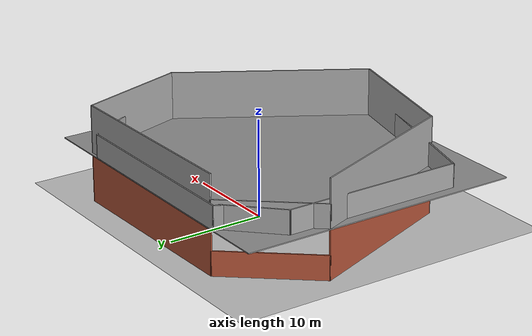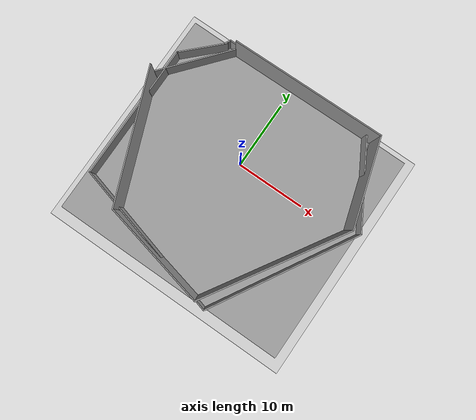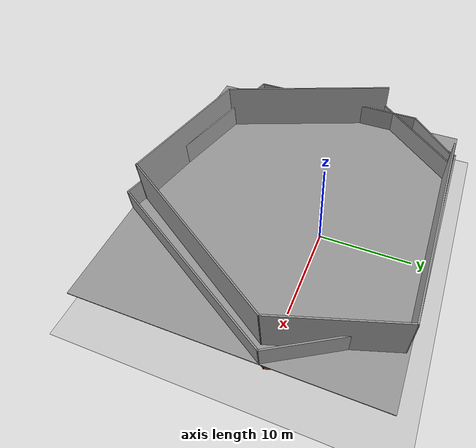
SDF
<sdf version="1.6">
 <world name="default">
  <light name="sun" type="directional">
   <pose>0 0 10 0 -0 0</pose>
   <diffuse>0.8 0.8 0.8 1</diffuse>
   <specular>0.2 0.2 0.2 1</specular>
   <attenuation>
    <range>1000</range>
    <constant>0.9</constant>
    <linear>0.01</linear>
    <quadratic>0.001</quadratic>
   </attenuation>
   <direction>-0.5 0.1 -0.9</direction>
  </light>
  <model name="ground_plane">
   <static>1</static>
   <link name="link">
    <collision name="collision">
     <geometry><plane><normal>0 0 1</normal><size>100 100</size></plane></geometry>
     <surface>
      <contact><collide_bitmask>65535</collide_bitmask></contact>
      <friction><ode><mu>100</mu><mu2>50</mu2></ode></friction>
     </surface>
    </collision>
    <visual name="visual">
     <cast_shadows>0</cast_shadows>
     <geometry><plane><normal>0 0 1</normal><size>100 100</size></plane></geometry>
     <material>
      <script><uri>file://media/materials/scripts/gazebo.material</uri><name>Gazebo/Grey</name></script>
     </material>
    </visual>
   </link>
  </model>
  <gravity>0 0 -9.8</gravity>
  <magnetic_field>6e-06 2.3e-05 -4.2e-05</magnetic_field>
  <atmosphere type="adiabatic"/>
  <physics name="default_physics" default="0" type="ode">
   <max_step_size>0.001</max_step_size>
   <real_time_factor>1</real_time_factor>
   <real_time_update_rate>1000</real_time_update_rate>
  </physics>
  <scene><ambient>0.4 0.4 0.4 1</ambient><background>0.7 0.7 0.7 1</background><shadows>1</shadows></scene>
  <spherical_coordinates>
   <surface_model>EARTH_WGS84</surface_model>
   <latitude_deg>0</latitude_deg>
   <longitude_deg>0</longitude_deg>
   <elevation>0</elevation>
   <heading_deg>0</heading_deg>
  </spherical_coordinates>
  <model name="openarea">
   <pose>1.14228 -3.20594 0 0 -0 0</pose>
   <link name="Floor_0">
    <collision name="Floor_0_Collision">
     <geometry><box><size>32.4698 29.1735 0.1</size></box></geometry>
     <pose>0 0 0.05 0 -0 0</pose>
    </collision>
    <visual name="Floor_0_Visual">
     <pose>0 0 0.05 0 -0 0</pose>
     <geometry><box><size>32.4698 29.1735 0.1</size></box></geometry>
     <material>
      <script><uri>file://media/materials/scripts/gazebo.material</uri><name>Gazebo/Grey</name></script>
      <ambient>1 1 1 1</ambient>
     </material>
     <meta><layer>1</layer></meta>
    </visual>
    <pose>0 0 5 0 -0 0</pose>
   </link>
   <link name="Wall_1">
    <collision name="Wall_1_Collision">
     <geometry><box><size>17.8686 0.15 5</size></box></geometry>
     <pose>0 0 2.5 0 -0 0</pose>
    </collision>
    <visual name="Wall_1_Visual">
     <pose>0 0 2.5 0 -0 0</pose>
     <geometry><box><size>17.8686 0.15 5</size></box></geometry>
     <material>
      <script><uri>file://media/materials/scripts/gazebo.material</uri><name>Gazebo/Bricks</name></script>
      <ambient>1 1 1 1</ambient>
     </material>
     <meta><layer>0</layer></meta>
    </visual>
    <pose>-12.8893 -2.43856 0 0 -0 -1.19639</pose>
   </link>
   <link name="Wall_10">
    <collision name="Wall_10_Collision">
     <geometry><box><size>20.0256 0.15 5</size></box></geometry>
     <pose>0 0 2.5 0 -0 0</pose>
    </collision>
    <visual name="Wall_10_Visual">
     <pose>0 0 2.5 0 -0 0</pose>
     <geometry><box><size>20.0256 0.15 5</size></box></geometry>
     <material>
      <script><uri>file://media/materials/scripts/gazebo.material</uri><name>Gazebo/Grey</name></script>
      <ambient>1 1 1 1</ambient>
     </material>
     <meta><layer>1</layer></meta>
    </visual>
    <pose>9.37972 -5.34806 5 0 -0 1.02037</pose>
   </link>
   <link name="Wall_11">
    <collision name="Wall_11_Collision">
     <geometry><box><size>11.7708 0.15 5</size></box></geometry>
     <pose>0 0 2.5 0 -0 0</pose>
    </collision>
    <visual name="Wall_11_Visual">
     <pose>0 0 2.5 0 -0 0</pose>
     <geometry><box><size>11.7708 0.15 5</size></box></geometry>
     <material>
      <script><uri>file://media/materials/scripts/gazebo.material</uri><name>Gazebo/Grey</name></script>
      <ambient>1 1 1 1</ambient>
     </material>
     <meta><layer>1</layer></meta>
    </visual>
    <pose>12.8707 8.67594 5 0 -0 1.86898</pose>
   </link>
   <link name="Wall_12">
    <collision name="Wall_12_Collision">
     <geometry><box><size>20.6194 0.15 5</size></box></geometry>
     <pose>0 0 2.5 0 -0 0</pose>
    </collision>
    <visual name="Wall_12_Visual">
     <pose>0 0 2.5 0 -0 0</pose>
     <geometry><box><size>20.6194 0.15 5</size></box></geometry>
     <material>
      <script><uri>file://media/materials/scripts/gazebo.material</uri><name>Gazebo/Grey</name></script>
      <ambient>1 1 1 1</ambient>
     </material>
     <meta><layer>1</layer></meta>
    </visual>
    <pose>0.929718 14.1089 5 0 -0 -3.12977</pose>
   </link>
   <link name="Wall_13">
    <collision name="Wall_13_Collision">
     <geometry><box><size>10.8041 0.15 2.5</size></box></geometry>
     <pose>0 0 1.25 0 -0 0</pose>
    </collision>
    <visual name="Wall_13_Visual">
     <pose>0 0 1.25 0 -0 0</pose>
     <geometry><box><size>10.8041 0.15 2.5</size></box></geometry>
     <material>
      <script><uri>file://media/materials/scripts/gazebo.material</uri><name>Gazebo/Grey</name></script>
      <ambient>1 1 1 1</ambient>
     </material>
     <meta><layer>1</layer></meta>
    </visual>
    <pose>-12.7168 9.89744 5 0 -0 -2.26607</pose>
   </link>
   <link name="Wall_14">
    <collision name="Wall_14_Collision">
     <geometry><box><size>6.5 0.15 2.5</size></box></geometry>
     <pose>0 0 1.25 0 -0 0</pose>
    </collision>
    <visual name="Wall_14_Visual">
     <pose>0 0 1.25 0 -0 0</pose>
     <geometry><box><size>6.5 0.15 2.5</size></box></geometry>
     <material>
      <script><uri>file://media/materials/scripts/gazebo.material</uri><name>Gazebo/Grey</name></script>
      <ambient>1 1 1 1</ambient>
     </material>
     <meta><layer>1</layer></meta>
    </visual>
    <pose>-12.9115 11.7013 5 0 -0 -2.35619</pose>
   </link>
   <link name="Wall_15">
    <collision name="Wall_15_Collision">
     <geometry><box><size>18.5 0.15 2.5</size></box></geometry>
     <pose>0 0 1.25 0 -0 0</pose>
    </collision>
    <visual name="Wall_15_Visual">
     <pose>0 0 1.25 0 -0 0</pose>
     <geometry><box><size>18.5 0.15 2.5</size></box></geometry>
     <material>
      <script><uri>file://media/materials/scripts/gazebo.material</uri><name>Gazebo/Grey</name></script>
      <ambient>1 1 1 1</ambient>
     </material>
     <meta><layer>1</layer></meta>
    </visual>
    <pose>-15.1565 0.281217 5 0 -0 -1.5708</pose>
   </link>
   <link name="Wall_16">
    <collision name="Wall_16_Collision">
     <geometry><box><size>21.75 0.15 2.5</size></box></geometry>
     <pose>0 0 1.25 0 -0 0</pose>
    </collision>
    <visual name="Wall_16_Visual">
     <pose>0 0 1.25 0 -0 0</pose>
     <geometry><box><size>21.75 0.15 2.5</size></box></geometry>
     <material>
      <script><uri>file://media/materials/scripts/gazebo.material</uri><name>Gazebo/Grey</name></script>
      <ambient>1 1 1 1</ambient>
     </material>
     <meta><layer>1</layer></meta>
    </visual>
    <pose>-4.72453 -11.689 5 0 -0 -0.261799</pose>
   </link>
   <link name="Wall_17">
    <collision name="Wall_17_Collision">
     <geometry><box><size>21 0.15 2.5</size></box></geometry>
     <pose>0 0 1.25 0 -0 0</pose>
    </collision>
    <visual name="Wall_17_Visual">
     <pose>0 0 1.25 0 -0 0</pose>
     <geometry><box><size>21 0.15 2.5</size></box></geometry>
     <material>
      <script><uri>file://media/materials/scripts/gazebo.material</uri><name>Gazebo/Grey</name></script>
      <ambient>1 1 1 1</ambient>
     </material>
     <meta><layer>1</layer></meta>
    </visual>
    <pose>10.92 -5.45596 5 0 -0 1.0472</pose>
   </link>
   <link name="Wall_18">
    <collision name="Wall_18_Collision">
     <geometry><box><size>12.75 0.15 2.5</size></box></geometry>
     <pose>0 0 1.25 0 -0 0</pose>
    </collision>
    <visual name="Wall_18_Visual">
     <pose>0 0 1.25 0 -0 0</pose>
     <geometry><box><size>12.75 0.15 2.5</size></box></geometry>
     <material>
      <script><uri>file://media/materials/scripts/gazebo.material</uri><name>Gazebo/Grey</name></script>
      <ambient>1 1 1 1</ambient>
     </material>
     <meta><layer>1</layer></meta>
    </visual>
    <pose>12.9825 9.02831 5 0 -0 2.0944</pose>
   </link>
   <link name="Wall_19">
    <collision name="Wall_19_Collision">
     <geometry><box><size>20.5 0.15 2.5</size></box></geometry>
     <pose>0 0 1.25 0 -0 0</pose>
    </collision>
    <visual name="Wall_19_Visual">
     <pose>0 0 1.25 0 -0 0</pose>
     <geometry><box><size>20.5 0.15 2.5</size></box></geometry>
     <material>
      <script><uri>file://media/materials/scripts/gazebo.material</uri><name>Gazebo/Grey</name></script>
      <ambient>1 1 1 1</ambient>
     </material>
     <meta><layer>1</layer></meta>
    </visual>
    <pose>-0.342534 14.4843 5 0 -0 3.14159</pose>
   </link>
   <link name="Wall_2">
    <collision name="Wall_2_Collision">
     <geometry><box><size>14.3316 0.15 5</size></box></geometry>
     <pose>0 0 2.5 0 -0 0</pose>
    </collision>
    <visual name="Wall_2_Visual">
     <pose>0 0 2.5 0 -0 0</pose>
     <geometry><box><size>14.3316 0.15 5</size></box></geometry>
     <material>
      <script><uri>file://media/materials/scripts/gazebo.material</uri><name>Gazebo/Bricks</name></script>
      <ambient>1 1 1 1</ambient>
     </material>
     <meta><layer>0</layer></meta>
    </visual>
    <pose>-2.73378 -12.2511 0 0 -0 -0.22283</pose>
   </link>
   <link name="Wall_20">
    <collision name="Wall_20_Collision">
     <geometry><box><size>1 0.15 2.5</size></box></geometry>
     <pose>0 0 1.25 0 -0 0</pose>
    </collision>
    <visual name="Wall_20_Visual">
     <pose>0 0 1.25 0 -0 0</pose>
     <geometry><box><size>1 0.15 2.5</size></box></geometry>
     <material>
      <script><uri>file://media/materials/scripts/gazebo.material</uri><name>Gazebo/Grey</name></script>
      <ambient>1 1 1 1</ambient>
     </material>
     <meta><layer>1</layer></meta>
    </visual>
    <pose>-10.73 14.1162 5 0 -0 -2.0944</pose>
   </link>
   <link name="Wall_3">
    <collision name="Wall_3_Collision">
     <geometry><box><size>20.0259 0.15 5</size></box></geometry>
     <pose>0 0 2.5 0 -0 0</pose>
    </collision>
    <visual name="Wall_3_Visual">
     <pose>0 0 2.5 0 -0 0</pose>
     <geometry><box><size>20.0259 0.15 5</size></box></geometry>
     <material>
      <script><uri>file://media/materials/scripts/gazebo.material</uri><name>Gazebo/Bricks</name></script>
      <ambient>1 1 1 1</ambient>
     </material>
     <meta><layer>0</layer></meta>
    </visual>
    <pose>9.37972 -5.34806 0 0 -0 1.02037</pose>
   </link>
   <link name="Wall_4">
    <collision name="Wall_4_Collision">
     <geometry><box><size>11.7709 0.15 5</size></box></geometry>
     <pose>0 0 2.5 0 -0 0</pose>
    </collision>
    <visual name="Wall_4_Visual">
     <pose>0 0 2.5 0 -0 0</pose>
     <geometry><box><size>11.7709 0.15 5</size></box></geometry>
     <material>
      <script><uri>file://media/materials/scripts/gazebo.material</uri><name>Gazebo/Bricks</name></script>
      <ambient>1 1 1 1</ambient>
     </material>
     <meta><layer>0</layer></meta>
    </visual>
    <pose>12.8707 8.67594 0 0 -0 1.86898</pose>
   </link>
   <link name="Wall_5">
    <collision name="Wall_5_Collision">
     <geometry><box><size>20.6195 0.15 5</size></box></geometry>
     <pose>0 0 2.5 0 -0 0</pose>
    </collision>
    <visual name="Wall_5_Visual">
     <pose>0 0 2.5 0 -0 0</pose>
     <geometry><box><size>20.6195 0.15 5</size></box></geometry>
     <material>
      <script><uri>file://media/materials/scripts/gazebo.material</uri><name>Gazebo/Bricks</name></script>
      <ambient>1 1 1 1</ambient>
     </material>
     <meta><layer>0</layer></meta>
    </visual>
    <pose>0.929718 14.1089 0 0 -0 -3.12977</pose>
   </link>
   <link name="Wall_6">
    <collision name="Wall_6_Collision">
     <geometry><box><size>10.8041 0.15 2.5</size></box></geometry>
     <pose>0 0 1.25 0 -0 0</pose>
    </collision>
    <visual name="Wall_6_Visual">
     <pose>0 0 1.25 0 -0 0</pose>
     <geometry><box><size>10.8041 0.15 2.5</size></box></geometry>
     <material>
      <script><uri>file://media/materials/scripts/gazebo.material</uri><name>Gazebo/Bricks</name></script>
      <ambient>1 1 1 1</ambient>
     </material>
     <meta><layer>0</layer></meta>
    </visual>
    <pose>-12.7168 9.89744 0 0 -0 -2.26607</pose>
   </link>
   <link name="Wall_8">
    <collision name="Wall_8_Collision">
     <geometry><box><size>17.8684 0.15 5</size></box></geometry>
     <pose>0 0 2.5 0 -0 0</pose>
    </collision>
    <visual name="Wall_8_Visual">
     <pose>0 0 2.5 0 -0 0</pose>
     <geometry><box><size>17.8684 0.15 5</size></box></geometry>
     <material>
      <script><uri>file://media/materials/scripts/gazebo.material</uri><name>Gazebo/Grey</name></script>
      <ambient>1 1 1 1</ambient>
     </material>
     <meta><layer>1</layer></meta>
    </visual>
    <pose>-12.8893 -2.43856 5 0 -0 -1.19639</pose>
   </link>
   <link name="Wall_9">
    <collision name="Wall_9_Collision">
     <geometry><box><size>14.3316 0.15 5</size></box></geometry>
     <pose>0 0 2.5 0 -0 0</pose>
    </collision>
    <visual name="Wall_9_Visual">
     <pose>0 0 2.5 0 -0 0</pose>
     <geometry><box><size>14.3316 0.15 5</size></box></geometry>
     <material>
      <script><uri>file://media/materials/scripts/gazebo.material</uri><name>Gazebo/Grey</name></script>
      <ambient>1 1 1 1</ambient>
     </material>
     <meta><layer>1</layer></meta>
    </visual>
    <pose>-2.73378 -12.2511 5 0 -0 -0.22283</pose>
   </link>
   <static>1</static>
  </model>
 </world>
</sdf>
